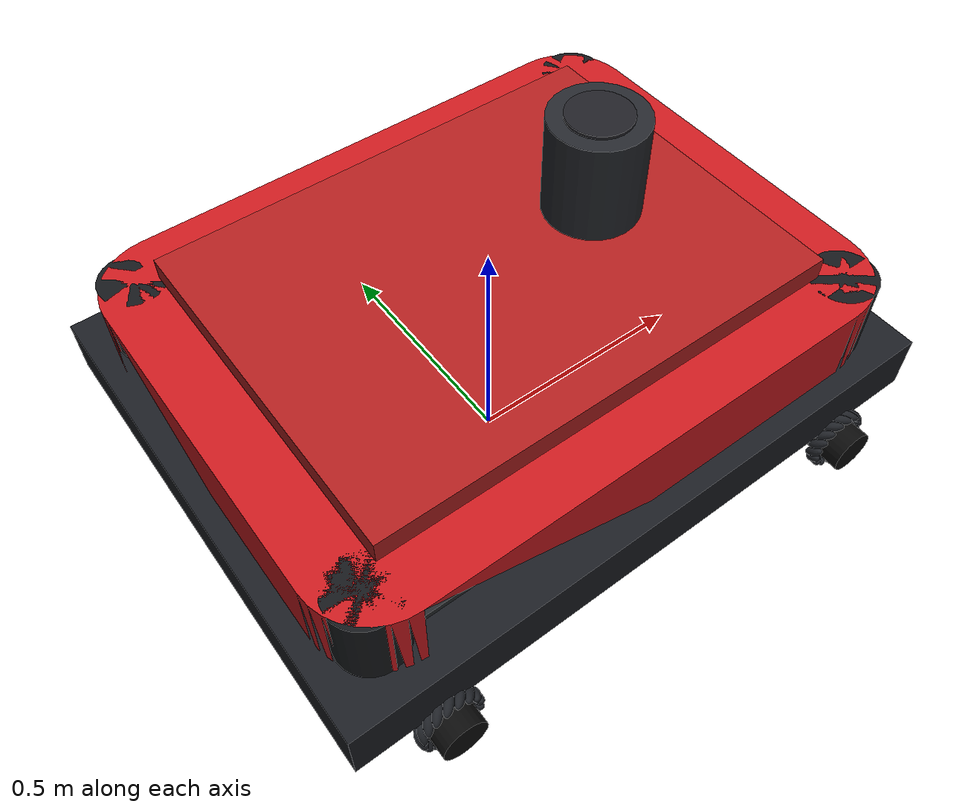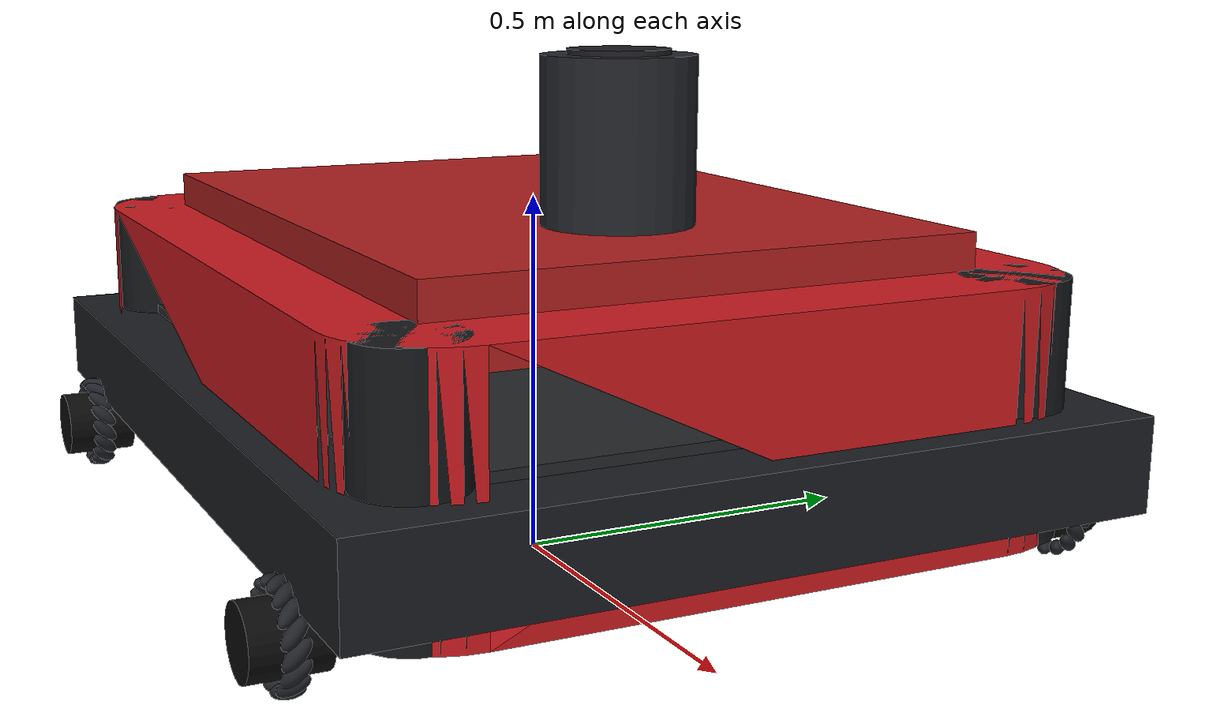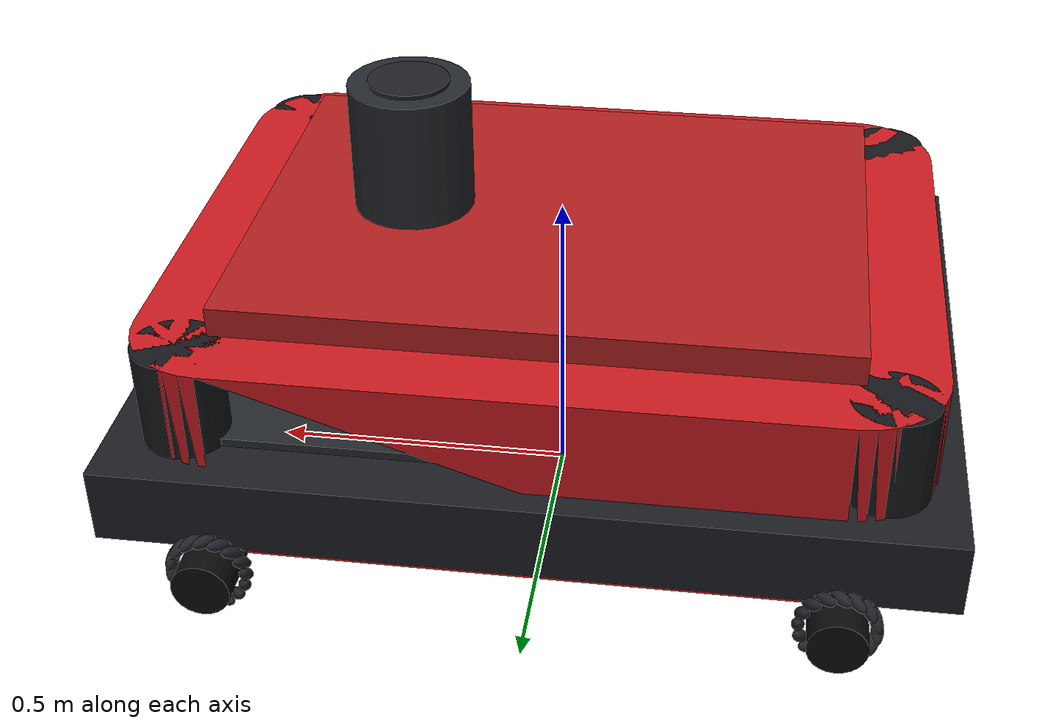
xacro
<?xml version="1.0"?>
<!-- Reduced uniformly by 10% for fleet clearance; collision outline 1.2857139 x 1.125 m. -->
<robot xmlns:xacro="http://www.ros.org/wiki/xacro" name="omni_mecanum_amr">
  <xacro:arg name="robot_name" default="omni_1"/>
  <xacro:arg name="controllers_file" default=""/>
  <xacro:include filename="$(find hetero_fleet_description)/urdf/common.xacro"/>
  <xacro:property name="controllers_file" value="$(arg controllers_file)"/>
  <xacro:property name="robot_name" value="$(arg robot_name)"/>
  <xacro:property name="s" value="1.339285714290"/>
  <xacro:property name="base_length" value="${0.90 * s}"/>
  <xacro:property name="base_width" value="${0.70 * s}"/>
  <xacro:property name="base_height" value="${0.20 * s}"/>
  <xacro:property name="wheel_radius" value="${0.095 * s}"/>
  <xacro:property name="wheel_width" value="${0.070 * s}"/>
  <link name="base_footprint"/>
  <link name="base_link">
    <inertial><origin xyz="0 0 ${base_height / 2}"/><mass value="${42.0 * s**3}"/><inertia ixx="${42.0 * s**3 * (base_width**2 + base_height**2) / 12}" ixy="0" ixz="0" iyy="${42.0 * s**3 * (base_length**2 + base_height**2) / 12}" iyz="0" izz="${42.0 * s**3 * (base_length**2 + base_width**2) / 12}"/></inertial>
    <visual><origin xyz="0 0 0"/><geometry><mesh filename="package://hetero_fleet_description/meshes/omni_shell.stl" scale="${s} ${s} ${s}"/></geometry><material name="red"><color rgba="0.78 0.10 0.12 1"/></material></visual>
    <collision><origin xyz="0 0 ${base_height / 2}"/><geometry><box size="${base_length} ${base_width} ${base_height}"/></geometry></collision>
  </link>
  <joint name="base_footprint_joint" type="fixed"><parent link="base_footprint"/><child link="base_link"/><origin xyz="0 0 ${wheel_radius}"/></joint>
  <link name="underbody_link"><visual><origin xyz="0 0 ${0.06 * s}"/><geometry><box size="${0.82 * s} ${0.62 * s} ${0.12 * s}"/></geometry><material name="underbody"><color rgba="0.14 0.15 0.16 1"/></material></visual><collision><origin xyz="0 0 ${0.06 * s}"/><geometry><box size="${0.82 * s} ${0.62 * s} ${0.12 * s}"/></geometry></collision></link>
  <joint name="underbody_joint" type="fixed"><parent link="base_link"/><child link="underbody_link"/><origin xyz="0 0 ${0.01 * s}"/></joint>
  <link name="omni_bumper_link"><visual><origin xyz="0 0 ${0.045 * s}"/><geometry><box size="${0.96 * s} ${0.76 * s} ${0.09 * s}"/></geometry><material name="bumper"><color rgba="0.10 0.11 0.13 1"/></material></visual><collision><origin xyz="0 0 ${0.045 * s}"/><geometry><box size="${0.96 * s} ${0.76 * s} ${0.09 * s}"/></geometry></collision></link>
  <joint name="omni_bumper_joint" type="fixed"><parent link="base_link"/><child link="omni_bumper_link"/><origin xyz="0 0 ${0.03 * s}"/></joint>
  <link name="omni_deck_link"><visual><origin xyz="0 0 ${0.035 * s}"/><geometry><box size="${0.72 * s} ${0.54 * s} ${0.08 * s}"/></geometry><material name="deck"><color rgba="0.68 0.12 0.12 1"/></material></visual><collision><origin xyz="0 0 ${0.035 * s}"/><geometry><box size="${0.72 * s} ${0.54 * s} ${0.08 * s}"/></geometry></collision></link>
  <joint name="omni_deck_joint" type="fixed"><parent link="base_link"/><child link="omni_deck_link"/><origin xyz="0 0 ${base_height}"/></joint>

  <link name="front_left_corner_guard"><visual><origin xyz="0 0 ${0.12 * s}"/><geometry><cylinder radius="${0.05 * s}" length="${0.24 * s}"/></geometry><material name="guard"><color rgba="0.08 0.09 0.10 1"/></material></visual><collision><origin xyz="0 0 ${0.12 * s}"/><geometry><cylinder radius="${0.05 * s}" length="${0.24 * s}"/></geometry></collision></link>
  <joint name="front_left_corner_guard_joint" type="fixed"><parent link="base_link"/><child link="front_left_corner_guard"/><origin xyz="${0.39 * s} ${0.29 * s} 0"/></joint>
  <link name="front_right_corner_guard"><visual><origin xyz="0 0 ${0.12 * s}"/><geometry><cylinder radius="${0.05 * s}" length="${0.24 * s}"/></geometry><material name="guard"><color rgba="0.08 0.09 0.10 1"/></material></visual><collision><origin xyz="0 0 ${0.12 * s}"/><geometry><cylinder radius="${0.05 * s}" length="${0.24 * s}"/></geometry></collision></link>
  <joint name="front_right_corner_guard_joint" type="fixed"><parent link="base_link"/><child link="front_right_corner_guard"/><origin xyz="${0.39 * s} ${-0.29 * s} 0"/></joint>
  <link name="rear_left_corner_guard"><visual><origin xyz="0 0 ${0.12 * s}"/><geometry><cylinder radius="${0.05 * s}" length="${0.24 * s}"/></geometry><material name="guard"><color rgba="0.08 0.09 0.10 1"/></material></visual><collision><origin xyz="0 0 ${0.12 * s}"/><geometry><cylinder radius="${0.05 * s}" length="${0.24 * s}"/></geometry></collision></link>
  <joint name="rear_left_corner_guard_joint" type="fixed"><parent link="base_link"/><child link="rear_left_corner_guard"/><origin xyz="${-0.39 * s} ${0.29 * s} 0"/></joint>
  <link name="rear_right_corner_guard"><visual><origin xyz="0 0 ${0.12 * s}"/><geometry><cylinder radius="${0.05 * s}" length="${0.24 * s}"/></geometry><material name="guard"><color rgba="0.08 0.09 0.10 1"/></material></visual><collision><origin xyz="0 0 ${0.12 * s}"/><geometry><cylinder radius="${0.05 * s}" length="${0.24 * s}"/></geometry></collision></link>
  <joint name="rear_right_corner_guard_joint" type="fixed"><parent link="base_link"/><child link="rear_right_corner_guard"/><origin xyz="${-0.39 * s} ${-0.29 * s} 0"/></joint>

  <!-- X-arranged roller visuals; four smooth wheel collisions use the equivalent
       free-roller constraints supplied by MecanumContacts in chassis coordinates. -->
  <xacro:macro name="mecanum_roller" params="wheel index hand">
    <xacro:property name="theta" value="${2*pi*index/16}"/>
    <xacro:property name="axis_x" value="${hand*cos(theta)/sqrt(2)}"/>
    <xacro:property name="axis_z" value="${-hand*sin(theta)/sqrt(2)}"/>
    <link name="${wheel}_roller_${index}">
      <visual><geometry><mesh filename="package://hetero_fleet_description/meshes/mecanum_barrel.stl"/></geometry><material name="roller"><color rgba="0.12 0.13 0.15 1"/></material></visual>

    </link>
    <joint name="${wheel}_roller_${index}_joint" type="fixed">
      <parent link="${wheel}_wheel_link"/><child link="${wheel}_roller_${index}"/>
      <origin xyz="${0.057*sin(theta)} 0 ${0.057*cos(theta)}" rpy="0 ${acos(axis_z)} ${atan2(1/sqrt(2),axis_x)}"/>

    </joint>

  </xacro:macro>
  <xacro:macro name="mecanum_wheel" params="name x y hand">
    <link name="${name}_wheel_link">
      <inertial><mass value="0.14"/><inertia ixx="${0.14*(3*0.035**2+wheel_width**2)/12}" ixy="0" ixz="0" iyy="${0.14*0.035**2/2}" iyz="0" izz="${0.14*(3*0.035**2+wheel_width**2)/12}"/></inertial>
      <visual><origin rpy="${pi/2} 0 0"/><geometry><cylinder radius="0.045" length="${wheel_width}"/></geometry><material name="hub"><color rgba="0.04 0.04 0.04 1"/></material></visual>
      <collision><origin rpy="${pi/2} 0 0"/><geometry><cylinder radius="${wheel_radius}" length="${wheel_width}"/></geometry></collision>
    </link>
    <joint name="${name}_wheel_joint" type="continuous"><parent link="base_link"/><child link="${name}_wheel_link"/><origin xyz="${x} ${y} 0"/><axis xyz="0 1 0"/><dynamics damping="0.002" friction="0"/><limit effort="15" velocity="18"/></joint>
    <xacro:mecanum_roller wheel="${name}" index="0" hand="${hand}"/>
    <xacro:mecanum_roller wheel="${name}" index="1" hand="${hand}"/>
    <xacro:mecanum_roller wheel="${name}" index="2" hand="${hand}"/>
    <xacro:mecanum_roller wheel="${name}" index="3" hand="${hand}"/>
    <xacro:mecanum_roller wheel="${name}" index="4" hand="${hand}"/>
    <xacro:mecanum_roller wheel="${name}" index="5" hand="${hand}"/>
    <xacro:mecanum_roller wheel="${name}" index="6" hand="${hand}"/>
    <xacro:mecanum_roller wheel="${name}" index="7" hand="${hand}"/>
    <xacro:mecanum_roller wheel="${name}" index="8" hand="${hand}"/>
    <xacro:mecanum_roller wheel="${name}" index="9" hand="${hand}"/>
    <xacro:mecanum_roller wheel="${name}" index="10" hand="${hand}"/>
    <xacro:mecanum_roller wheel="${name}" index="11" hand="${hand}"/>
    <xacro:mecanum_roller wheel="${name}" index="12" hand="${hand}"/>
    <xacro:mecanum_roller wheel="${name}" index="13" hand="${hand}"/>
    <xacro:mecanum_roller wheel="${name}" index="14" hand="${hand}"/>
    <xacro:mecanum_roller wheel="${name}" index="15" hand="${hand}"/>
  </xacro:macro>
  <xacro:mecanum_wheel name="front_left" x="${base_length/2-0.10*s}" y="${base_width/2+wheel_width/2}" hand="1"/>
  <xacro:mecanum_wheel name="front_right" x="${base_length/2-0.10*s}" y="${-base_width/2-wheel_width/2}" hand="-1"/>
  <xacro:mecanum_wheel name="rear_left" x="${-base_length/2+0.10*s}" y="${base_width/2+wheel_width/2}" hand="-1"/>
  <xacro:mecanum_wheel name="rear_right" x="${-base_length/2+0.10*s}" y="${-base_width/2-wheel_width/2}" hand="1"/>

  <link name="lidar_link">
    <inertial><mass value="0.15"/><inertia ixx="0.0002" ixy="0" ixz="0" iyy="0.0002" iyz="0" izz="0.0003"/></inertial>
    <visual><geometry><cylinder radius="${0.048 * s}" length="${0.05 * s}"/></geometry><material name="lidar"><color rgba="0.12 0.12 0.14 1"/></material></visual><collision><geometry><cylinder radius="${0.048 * s}" length="${0.05 * s}"/></geometry></collision>
  </link>
  <link name="lidar_mount_link"><visual><origin xyz="0 0 ${0.08 * s}"/><geometry><cylinder radius="${0.072 * s}" length="${0.16 * s}"/></geometry><material name="mount"><color rgba="0.14 0.15 0.17 1"/></material></visual><collision><origin xyz="0 0 ${0.08 * s}"/><geometry><cylinder radius="${0.065 * s}" length="${0.14 * s}"/></geometry></collision></link>
  <joint name="lidar_mount_joint" type="fixed"><parent link="omni_deck_link"/><child link="lidar_mount_link"/><origin xyz="${0.18 * s} 0 ${0.07 * s}"/></joint>
  <joint name="lidar_joint" type="fixed"><parent link="lidar_mount_link"/><child link="lidar_link"/><origin xyz="0 0 ${0.14 * s}"/></joint>
  <!-- Lidar height lands at ~0.29 m, inside the map's obstacle band of
       maps/geomap.pgm, so scan and map agree about what is in the way. -->
  <gazebo reference="lidar_link"><sensor name="${robot_name}_lidar" type="gpu_lidar"><always_on>1</always_on><visualize>false</visualize><update_rate>20</update_rate><topic>/${robot_name}/scan</topic><frame_id>lidar_link</frame_id><lidar><scan><horizontal><samples>1080</samples><resolution>1</resolution><min_angle>-3.14159</min_angle><max_angle>3.14159</max_angle></horizontal></scan><range><min>0.10</min><max>15.0</max><resolution>0.01</resolution></range></lidar></sensor></gazebo>
  <xacro:fleet_gazebo_material link="base_link" rgba="0.78 0.10 0.12 1"/>
  <gazebo><plugin filename="libhetero_mecanum_contacts.so" name="hetero_fleet::MecanumContacts"/></gazebo>
  <xacro:fleet_gazebo_wheel_dynamics link="front_left_wheel_link" mu1="0.01" mu2="1.2" kp="100000" kd="20"/>
  <xacro:fleet_gazebo_wheel_dynamics link="front_right_wheel_link" mu1="0.01" mu2="1.2" kp="100000" kd="20"/>
  <xacro:fleet_gazebo_wheel_dynamics link="rear_left_wheel_link" mu1="0.01" mu2="1.2" kp="100000" kd="20"/>
  <xacro:fleet_gazebo_wheel_dynamics link="rear_right_wheel_link" mu1="0.01" mu2="1.2" kp="100000" kd="20"/>
  <xacro:fleet_ros2_control name="${robot_name}" wheel_joints="${['front_left_wheel_joint', 'front_right_wheel_joint', 'rear_left_wheel_joint', 'rear_right_wheel_joint']}" controller_type="mecanum" controllers_file="${controllers_file}" namespace="${robot_name}"/>
</robot>
